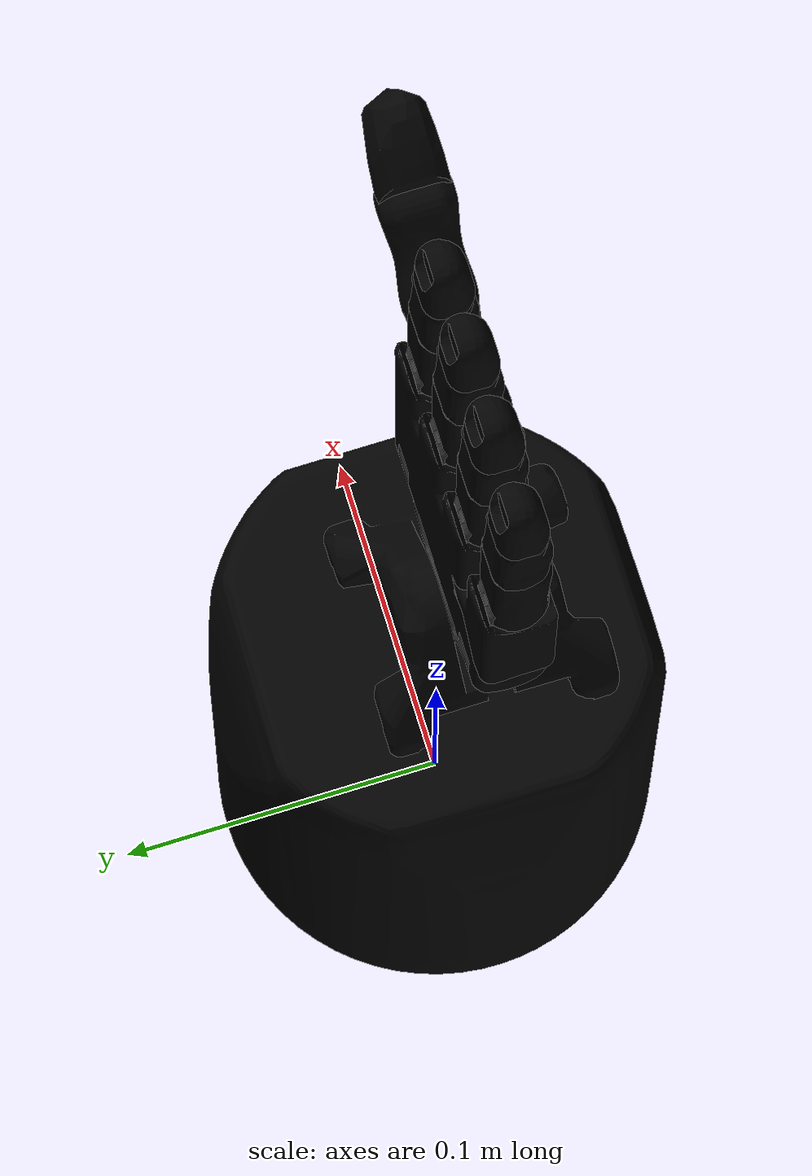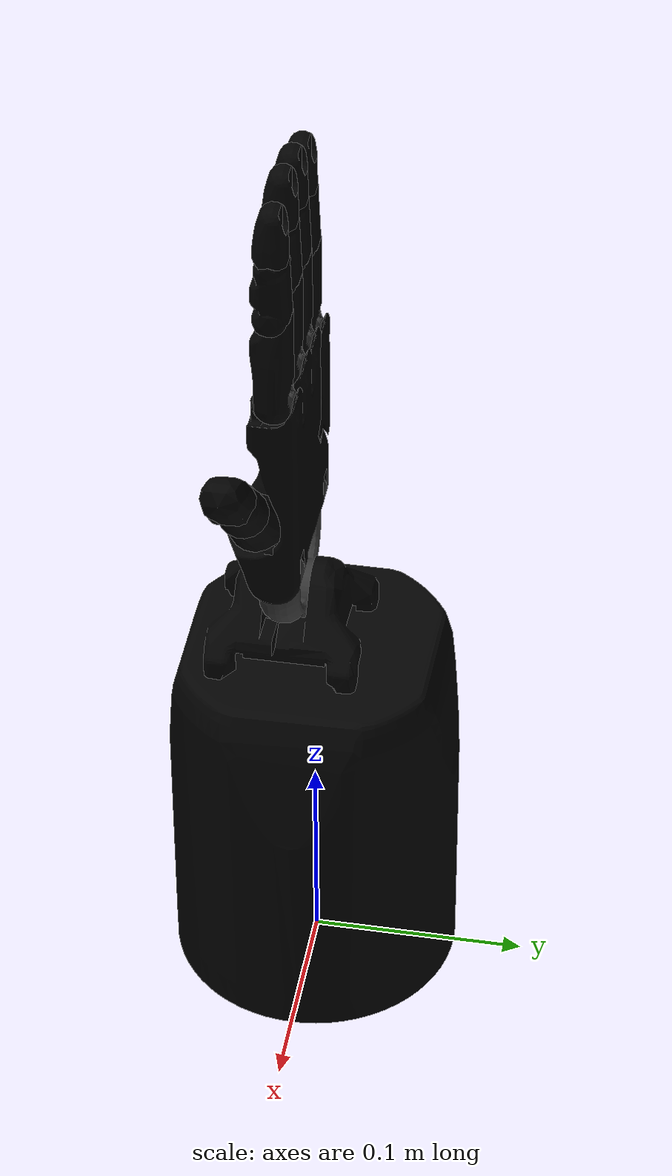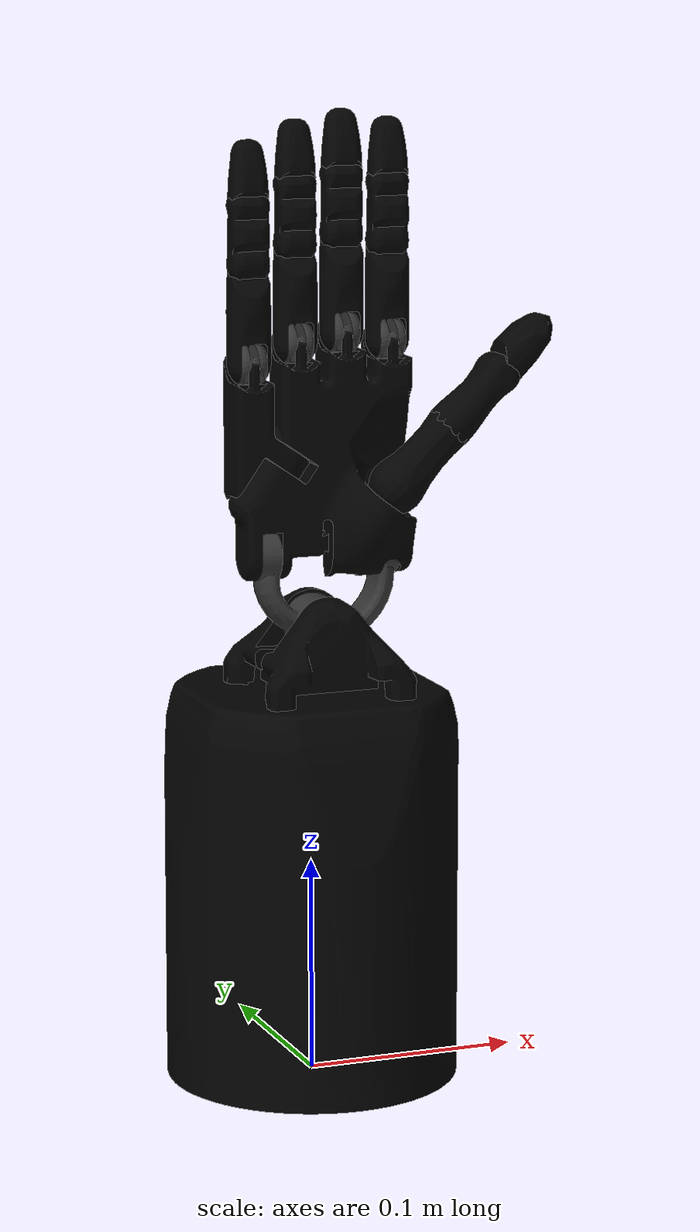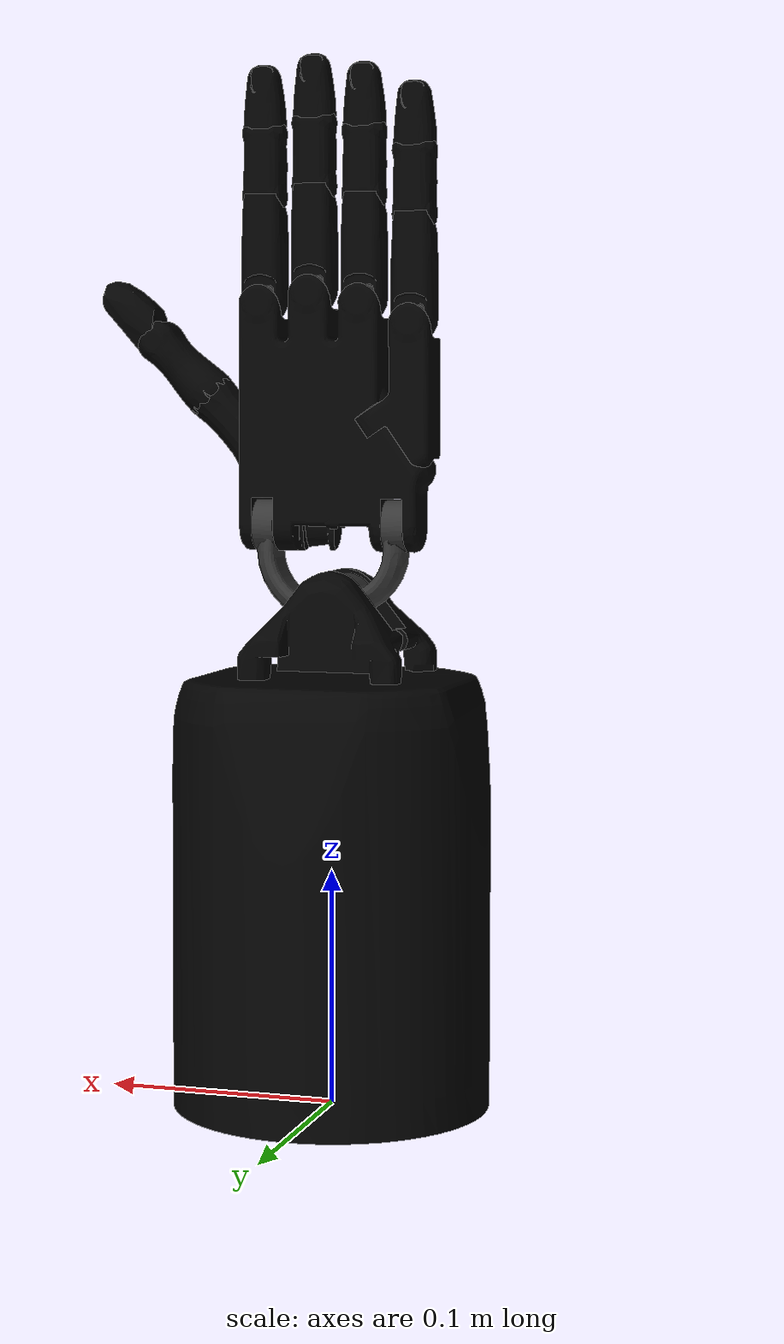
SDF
<?xml version="1.0"?>
<sdf version='1.7'>
    <model name='shadow_hand'>
        <self_collide>false</self_collide>

        <!-- Fix To World -->
        <joint name="panda_joint_world" type="fixed">
            <parent>world</parent>
            <child>forearm</child>
        </joint>

        <!-- Forearm-Wrist-Palm Links -->
        <link name='forearm'>
            <self_collide>false</self_collide>
            <visual name='forearm_visual'>
                <geometry>
                    <mesh>
                        <uri>meshes/visual/forearm.dae</uri>
                    </mesh>
                </geometry>
            </visual>
            <collision name='forearm_collision'>
                <geometry>
                    <mesh>
                        <uri>meshes/collision/forearm.stl</uri>
                    </mesh>
                </geometry>
            </collision>
            <inertial>
                <pose>0.000158665 -0.000296213 0.0939161 0 0 0</pose>
                <mass>1.8670590993494502</mass>
                <inertia>
                    <ixx>0.007479321336534709</ixx>
                    <iyy>0.007475478330362289</iyy>
                    <izz>0.004156257054350847</izz>
                    <ixy>-7.267790891410464e-08</ixy>
                    <ixz>4.2529549726838906e-07</ixz>
                    <iyz>3.883949104746152e-05</iyz>
                </inertia>
            </inertial>
        </link>

        <link name='wrist'>
            <self_collide>false</self_collide>
            <pose relative_to='forearm_joint'>0 0 0 0 0 0</pose>
            <visual name='wrist_visual'>
                <geometry>
                    <mesh>
                        <uri>meshes/visual/wrist.dae</uri>
                    </mesh>
                </geometry>
            </visual>
            <collision name='wrist_collision'>
                <geometry>
                    <mesh>
                        <uri>meshes/collision/wrist.stl</uri>
                    </mesh>
                </geometry>
            </collision>
            <inertial>
                <pose>0.00199931 -4.79026e-05 0.0114013 0 0 0</pose>
                <mass>0.20946475291094357</mass>
                <inertia>
                    <ixx>5.593091243122308e-05</ixx>
                    <iyy>0.00012848029174956482</iyy>
                    <izz>8.86688859858151e-05</izz>
                    <ixy>-1.8807050662536076e-08</ixy>
                    <ixz>-1.3060607259007272e-06</ixz>
                    <iyz>-1.1433247253685913e-07</iyz>
                </inertia>
            </inertial>
        </link>

        <link name='palm'>
            <self_collide>false</self_collide>
            <pose relative_to='wrist_joint'>0 0 0 0 0 0</pose>
            <visual name='palm_visual'>
                <geometry>
                    <mesh>
                        <uri>meshes/visual/palm.dae</uri>
                    </mesh>
                </geometry>
            </visual>
            <collision name='palm_collision'>
                <geometry>
                    <mesh>
                        <uri>meshes/collision/palm.stl</uri>
                    </mesh>
                </geometry>
            </collision>
            <inertial>
                <pose>0.00560659 0.000168738 0.0406171 0 0 0</pose>
                <mass>0.8989030155430766</mass>
                <inertia>
                    <ixx>0.0007551001272989889</ixx>
                    <iyy>0.001091486701981928</iyy>
                    <izz>0.0004204867341503172</izz>
                    <ixy>-3.492739878765091e-06</ixy>
                    <ixz>-8.196253003214903e-05</ixz>
                    <iyz>-2.266383206764121e-05</iyz>
                </inertia>
            </inertial>
        </link>

        <!-- Forearm-Wrist Joints -->
        <joint name='forearm_joint' type='fixed'>
            <pose relative_to='forearm'>0 -0.01 0.213 0 0 0</pose>
            <parent>forearm</parent>
            <child>wrist</child>
        </joint>

        <joint name='wrist_joint' type='fixed'>
            <pose relative_to='wrist'>0 0 0.034 0 0 0</pose>
            <parent>wrist</parent>
            <child>palm</child>
        </joint>

        <!-- Thumb Links -->
        <link name='thumb_base'>
            <pose relative_to='thumb_joint1'>0 0 0 0 0 0</pose>
        </link>

        <link name='thumb_proximal'>
            <self_collide>false</self_collide>
            <pose relative_to='thumb_joint2'>0 0 0 0 0 0</pose>
            <visual name='thumb_proximal_visual'>
                <geometry>
                    <mesh>
                        <uri>meshes/visual/thumb_proximal.dae</uri>
                    </mesh>
                </geometry>
            </visual>
            <collision name='thumb_proximal_collision'>
                <geometry>
                    <mesh>
                        <uri>meshes/collision/thumb_proximal.stl</uri>
                    </mesh>
                </geometry>
            </collision>
            <inertial>
                <pose>-6.37678e-06 -2.60263e-05 0.0167151 0 0 0</pose>
                <mass>0.14945225599921122</mass>
                <inertia>
                    <ixx>4.411418271322683e-05</ixx>
                    <iyy>4.4102721450521684e-05</iyy>
                    <izz>8.856520036977598e-06</izz>
                    <ixy>5.554615670778389e-09</ixy>
                    <ixz>-3.57753482568105e-08</ixz>
                    <iyz>-1.4658342135322015e-08</iyz>
                </inertia>
            </inertial>
        </link>

        <link name='thumb_hub'>
            <pose relative_to='thumb_joint3'>0 0 0 0 0 0</pose>
        </link>

        <link name='thumb_middle'>
            <self_collide>false</self_collide>
            <pose relative_to='thumb_joint4'>0 0 0 0 0 0</pose>
            <visual name='thumb_middle_visual'>
                <geometry>
                    <mesh>
                        <uri>meshes/visual/thumb_middle.dae</uri>
                    </mesh>
                </geometry>
            </visual>
            <collision name='thumb_middle_collision'>
                <geometry>
                    <mesh>
                        <uri>meshes/collision/thumb_middle.stl</uri>
                    </mesh>
                </geometry>
            </collision>
            <inertial>
                <pose>7.47896e-05 -4.5082e-05 0.0153482 0 0 0</pose>
                <mass>0.11021476278915708</mass>
                <inertia>
                    <ixx>2.4368918444527592e-05</ixx>
                    <iyy>2.3749026220471563e-05</iyy>
                    <izz>5.6166937499601026e-06</izz>
                    <ixy>2.681795007815437e-12</ixy>
                    <ixz>1.6935381501090475e-08</ixz>
                    <iyz>4.266902097800442e-12</iyz>
                </inertia>
            </inertial>
        </link>

        <link name='thumb_distal'>
            <self_collide>false</self_collide>
            <pose relative_to='thumb_joint5'>0 0 0 0 0 0</pose>
            <visual name='thumb_distal_visual'>
                <geometry>
                    <mesh>
                        <uri>meshes/visual/thumb_distal.dae</uri>
                    </mesh>
                </geometry>
            </visual>
            <collision name='thumb_distal_collision'>
                <geometry>
                    <mesh>
                        <uri>meshes/collision/thumb_distal.stl</uri>
                    </mesh>
                </geometry>
            </collision>
            <inertial>
                <pose>2.55227e-05 0.000159331 0.0160141 0 0 0</pose>
                <mass>0.06104943729865724</mass>
                <inertia>
                    <ixx>5.578197585761807e-06</ixx>
                    <iyy>6.068884597217566e-06</iyy>
                    <izz>2.809810687287833e-06</izz>
                    <ixy>-7.712412276601149e-09</ixy>
                    <ixz>2.6443953020771643e-08</ixz>
                    <iyz>3.177683019939289e-07</iyz>
                </inertia>
            </inertial>
        </link>

        <!-- Thumb Joints -->
        <joint name='thumb_joint1' type='revolute'>
            <pose relative_to='palm'>0.034 -0.0085 0.029 0 0.785398 0</pose>
            <parent>palm</parent>
            <child>thumb_base</child>
            <axis>
                <xyz>0 0 -1</xyz>
                <limit>
                    <lower>-1.0472</lower>
                    <upper>1.0472</upper>
                    <effort>100</effort>
                    <velocity>4</velocity>
                </limit>
                <dynamics>
                    <damping>0.2</damping>
                    <friction>0.0005</friction>
                    <spring_reference>0</spring_reference>
                    <spring_stiffness>0</spring_stiffness>
                </dynamics>
            </axis>
        </joint>

        <joint name='thumb_joint2' type='revolute'>
            <pose relative_to='thumb_base'>0 0 0 0 0 0</pose>
            <parent>thumb_base</parent>
            <child>thumb_proximal</child>
            <axis>
                <xyz>1 0 0</xyz>
                <limit>
                    <lower>0</lower>
                    <upper>1.22173</upper>
                    <effort>100</effort>
                    <velocity>4</velocity>
                </limit>
                <dynamics>
                    <damping>0.2</damping>
                    <friction>0.0005</friction>
                    <spring_reference>0</spring_reference>
                    <spring_stiffness>0</spring_stiffness>
                </dynamics>
            </axis>
        </joint>

        <joint name='thumb_joint3' type='revolute'>
            <pose relative_to='thumb_proximal'>0 0 0.038 0 0 0</pose>
            <parent>thumb_proximal</parent>
            <child>thumb_hub</child>
            <axis>
                <xyz>1 0 0</xyz>
                <limit>
                    <lower>-0.20944</lower>
                    <upper>0.20944</upper>
                    <effort>20</effort>
                    <velocity>4</velocity>
                </limit>
                <dynamics>
                    <damping>0.1</damping>
                    <friction>0.00005</friction>
                    <spring_reference>0</spring_reference>
                    <spring_stiffness>0</spring_stiffness>
                </dynamics>
            </axis>
        </joint>

        <joint name='thumb_joint4' type='revolute'>
            <pose relative_to='thumb_hub'>0 0 0 0 0 0</pose>
            <parent>thumb_hub</parent>
            <child>thumb_middle</child>
            <axis>
                <xyz>0 -1 0</xyz>
                <limit>
                    <lower>-0.698132</lower>
                    <upper>0.698132</upper>
                    <effort>20</effort>
                    <velocity>2</velocity>
                </limit>
                <dynamics>
                    <damping>0.05</damping>
                    <friction>0.00005</friction>
                    <spring_reference>0</spring_reference>
                    <spring_stiffness>0</spring_stiffness>
                </dynamics>
            </axis>
        </joint>

        <joint name='thumb_joint5' type='revolute'>
            <pose relative_to='thumb_middle'>0 0 0.032 0 0 -1.5708</pose>
            <parent>thumb_middle</parent>
            <child>thumb_distal</child>
            <axis>
                <xyz>1 0 0</xyz>
                <limit>
                    <lower>0</lower>
                    <upper>1.5708</upper>
                    <effort>20</effort>
                    <velocity>4</velocity>
                </limit>
                <dynamics>
                    <damping>0.025</damping>
                    <friction>0.00001</friction>
                    <spring_reference>0</spring_reference>
                    <spring_stiffness>0</spring_stiffness>
                </dynamics>
            </axis>
        </joint>

        <!-- Index Finger Links -->
        <link name='index_finger_knuckle'>
            <self_collide>false</self_collide>
            <pose relative_to='index_finger_joint1'>0 0 0.0005 0 0 0</pose>
            <visual name='index_finger_knuckle_visual'>
                <geometry>
                    <mesh>
                        <uri>meshes/visual/knuckle.dae</uri>
                    </mesh>
                </geometry>
            </visual>
            <collision name='index_finger_knuckle_collision'>
                <geometry>
                    <mesh>
                        <uri>meshes/collision/knuckle.stl</uri>
                    </mesh>
                </geometry>
            </collision>
            <inertial>
                <pose>-1.04918e-05 0.000479353 -0.000502517 0 0 0</pose>
                <mass>0.01756170743072032</mass>
                <inertia>
                    <ixx>6.316479307176084e-07</ixx>
                    <iyy>5.565126662837287e-07</iyy>
                    <izz>5.418430344218945e-07</izz>
                    <ixy>-1.2382869141168063e-09</ixy>
                    <ixz>-5.831177123574035e-10</ixz>
                    <iyz>1.0137214702954782e-08</iyz>
                </inertia>
            </inertial>
        </link>

        <link name='index_finger_proximal'>
            <self_collide>false</self_collide>
            <pose relative_to='index_finger_joint2'>0 0 0 0 0 0</pose>
            <visual name='index_finger_proximal_visual'>
                <geometry>
                    <mesh>
                        <uri>meshes/visual/finger_proximal.dae</uri>
                    </mesh>
                </geometry>
            </visual>
            <collision name='index_finger_proximal_collision'>
                <geometry>
                    <mesh>
                        <uri>meshes/collision/finger_proximal.stl</uri>
                    </mesh>
                </geometry>
            </collision>
            <inertial>
                <pose>1.36393e-06 5.46069e-05 0.0253411 0 0 0</pose>
                <mass>0.08285889035010244</mass>
                <inertia>
                    <ixx>1.64199692748578e-05</ixx>
                    <iyy>1.7157966187680744e-05</iyy>
                    <izz>3.747449913981619e-06</izz>
                    <ixy>1.253825845654266e-11</ixy>
                    <ixz>-7.420066134437321e-10</ixz>
                    <iyz>-1.7510504779955134e-07</iyz>
                </inertia>
            </inertial>
        </link>

        <link name='index_finger_middle'>
            <self_collide>false</self_collide>
            <pose relative_to='index_finger_joint3'>0 0 0 0 0 0</pose>
            <visual name='index_finger_middle_visual'>
                <geometry>
                    <mesh>
                        <uri>meshes/visual/finger_middle.dae</uri>
                    </mesh>
                </geometry>
            </visual>
            <collision name='index_finger_middle_collision'>
                <geometry>
                    <mesh>
                        <uri>meshes/collision/finger_middle.stl</uri>
                    </mesh>
                </geometry>
            </collision>
            <inertial>
                <pose>-2.71515e-06 -3.22079e-05 0.0115512 0 0 0</pose>
                <mass>0.06213685090672571</mass>
                <inertia>
                    <ixx>7.92822501939719e-06</ixx>
                    <iyy>8.29486054080741e-06</iyy>
                    <izz>2.3370015376721975e-06</izz>
                    <ixy>1.358464044894204e-12</ixy>
                    <ixz>8.557150053771225e-11</ixz>
                    <iyz>1.5315102261449506e-09</iyz>
                </inertia>
            </inertial>
        </link>

        <link name='index_finger_distal'>
            <self_collide>false</self_collide>
            <pose relative_to='index_finger_joint4'>0 0 0 0 0 0</pose>
            <visual name='index_finger_distal_visual'>
                <geometry>
                    <mesh>
                        <uri>meshes/visual/finger_distal.dae</uri>
                    </mesh>
                </geometry>
            </visual>
            <collision name='index_finger_distal_collision'>
                <geometry>
                    <mesh>
                        <uri>meshes/collision/finger_distal.stl</uri>
                    </mesh>
                </geometry>
            </collision>
            <inertial>
                <pose>6.76188e-09 -0.000120361 0.0153037 0 0 0</pose>
                <mass>0.02746135061792896</mass>
                <inertia>
                    <ixx>1.4194224188403926e-06</ixx>
                    <iyy>1.5806235334852189e-06</iyy>
                    <izz>8.420308791621785e-07</izz>
                    <ixy>1.6317994313320325e-12</ixy>
                    <ixz>1.2231062439498777e-12</ixz>
                    <iyz>4.943899859930379e-09</iyz>
                </inertia>
            </inertial>
        </link>

        <!-- Index Finger Joints -->
        <joint name='index_finger_joint1' type='revolute'>
            <pose relative_to='palm'>0.033 0 0.095 0 0 0</pose>
            <parent>palm</parent>
            <child>index_finger_knuckle</child>
            <axis>
                <xyz>0 -1 0</xyz>
                <limit>
                    <lower>-0.349066</lower>
                    <upper>0.349066</upper>
                    <effort>20</effort>
                    <velocity>2</velocity>
                </limit>
                <dynamics>
                    <damping>0.15</damping>
                    <friction>0.0002</friction>
                    <spring_reference>0</spring_reference>
                    <spring_stiffness>0</spring_stiffness>
                </dynamics>
            </axis>
        </joint>

        <joint name='index_finger_joint2' type='revolute'>
            <pose relative_to='index_finger_knuckle'>0 0 0 0 0 0</pose>
            <parent>index_finger_knuckle</parent>
            <child>index_finger_proximal</child>
            <axis>
                <xyz>1 0 0</xyz>
                <limit>
                    <lower>0</lower>
                    <upper>1.5708</upper>
                    <effort>20</effort>
                    <velocity>2</velocity>
                </limit>
                <dynamics>
                    <damping>0.1</damping>
                    <friction>0.0001</friction>
                    <spring_reference>0</spring_reference>
                    <spring_stiffness>0</spring_stiffness>
                </dynamics>
            </axis>
        </joint>

        <joint name='index_finger_joint3' type='revolute'>
            <pose relative_to='index_finger_proximal'>0 0 0.045 0 0 0</pose>
            <parent>index_finger_proximal</parent>
            <child>index_finger_middle</child>
            <axis>
                <xyz>1 0 0</xyz>
                <limit>
                    <lower>0</lower>
                    <upper>1.5708</upper>
                    <effort>20</effort>
                    <velocity>2</velocity>
                </limit>
                <dynamics>
                    <damping>0.05</damping>
                    <friction>0.00005</friction>
                    <spring_reference>0</spring_reference>
                    <spring_stiffness>0</spring_stiffness>
                </dynamics>
            </axis>
        </joint>

        <joint name='index_finger_joint4' type='revolute'>
            <pose relative_to='index_finger_middle'>0 0 0.025 0 0 0</pose>
            <parent>index_finger_middle</parent>
            <child>index_finger_distal</child>
            <axis>
                <xyz>1 0 0</xyz>
                <limit>
                    <lower>0</lower>
                    <upper>1.5708</upper>
                    <effort>20</effort>
                    <velocity>2</velocity>
                </limit>
                <dynamics>
                    <damping>0.025</damping>
                    <friction>0.00001</friction>
                    <spring_reference>0</spring_reference>
                    <spring_stiffness>0</spring_stiffness>
                </dynamics>
            </axis>
        </joint>

        <!-- Middle Finger Links -->
        <link name='middle_finger_knuckle'>
            <self_collide>false</self_collide>
            <pose relative_to='middle_finger_joint1'>0 0 0.0005 0 0 0</pose>
            <visual name='middle_finger_knuckle_visual'>
                <geometry>
                    <mesh>
                        <uri>meshes/visual/knuckle.dae</uri>
                    </mesh>
                </geometry>
            </visual>
            <collision name='middle_finger_knuckle_collision'>
                <geometry>
                    <mesh>
                        <uri>meshes/collision/knuckle.stl</uri>
                    </mesh>
                </geometry>
            </collision>
            <inertial>
                <pose>-1.04918e-05 0.000479353 -0.000502517 0 0 0</pose>
                <mass>0.01756170743072032</mass>
                <inertia>
                    <ixx>6.316479307176084e-07</ixx>
                    <iyy>5.565126662837287e-07</iyy>
                    <izz>5.418430344218945e-07</izz>
                    <ixy>-1.2382869141168063e-09</ixy>
                    <ixz>-5.831177123574035e-10</ixz>
                    <iyz>1.0137214702954782e-08</iyz>
                </inertia>
            </inertial>
        </link>

        <link name='middle_finger_proximal'>
            <self_collide>false</self_collide>
            <pose relative_to='middle_finger_joint2'>0 0 0 0 0 0</pose>
            <visual name='middle_finger_proximal_visual'>
                <geometry>
                    <mesh>
                        <uri>meshes/visual/finger_proximal.dae</uri>
                    </mesh>
                </geometry>
            </visual>
            <collision name='middle_finger_proximal_collision'>
                <geometry>
                    <mesh>
                        <uri>meshes/collision/finger_proximal.stl</uri>
                    </mesh>
                </geometry>
            </collision>
            <inertial>
                <pose>1.36393e-06 5.46069e-05 0.0253411 0 0 0</pose>
                <mass>0.08285889035010244</mass>
                <inertia>
                    <ixx>1.64199692748578e-05</ixx>
                    <iyy>1.7157966187680744e-05</iyy>
                    <izz>3.747449913981619e-06</izz>
                    <ixy>1.253825845654266e-11</ixy>
                    <ixz>-7.420066134437321e-10</ixz>
                    <iyz>-1.7510504779955134e-07</iyz>
                </inertia>
            </inertial>
        </link>

        <link name='middle_finger_middle'>
            <self_collide>false</self_collide>
            <pose relative_to='middle_finger_joint3'>0 0 0 0 0 0</pose>
            <visual name='middle_finger_middle_visual'>
                <geometry>
                    <mesh>
                        <uri>meshes/visual/finger_middle.dae</uri>
                    </mesh>
                </geometry>
            </visual>
            <collision name='middle_finger_middle_collision'>
                <geometry>
                    <mesh>
                        <uri>meshes/collision/finger_middle.stl</uri>
                    </mesh>
                </geometry>
            </collision>
            <inertial>
                <pose>-2.71515e-06 -3.22079e-05 0.0115512 0 0 0</pose>
                <mass>0.06213685090672571</mass>
                <inertia>
                    <ixx>7.92822501939719e-06</ixx>
                    <iyy>8.29486054080741e-06</iyy>
                    <izz>2.3370015376721975e-06</izz>
                    <ixy>1.358464044894204e-12</ixy>
                    <ixz>8.557150053771225e-11</ixz>
                    <iyz>1.5315102261449506e-09</iyz>
                </inertia>
            </inertial>
        </link>

        <link name='middle_finger_distal'>
            <self_collide>false</self_collide>
            <pose relative_to='middle_finger_joint4'>0 0 0 0 0 0</pose>
            <visual name='middle_finger_distal_visual'>
                <geometry>
                    <mesh>
                        <uri>meshes/visual/finger_distal.dae</uri>
                    </mesh>
                </geometry>
            </visual>
            <collision name='middle_finger_distal_collision'>
                <geometry>
                    <mesh>
                        <uri>meshes/collision/finger_distal.stl</uri>
                    </mesh>
                </geometry>
            </collision>
            <inertial>
                <pose>6.76188e-09 -0.000120361 0.0153037 0 0 0</pose>
                <mass>0.02746135061792896</mass>
                <inertia>
                    <ixx>1.4194224188403926e-06</ixx>
                    <iyy>1.5806235334852189e-06</iyy>
                    <izz>8.420308791621785e-07</izz>
                    <ixy>1.6317994313320325e-12</ixy>
                    <ixz>1.2231062439498777e-12</ixz>
                    <iyz>4.943899859930379e-09</iyz>
                </inertia>
            </inertial>
        </link>

        <!-- Middle Finger Joints -->
        <joint name='middle_finger_joint1' type='revolute'>
            <pose relative_to='palm'>0.011 0 0.099 0 0 0</pose>
            <parent>palm</parent>
            <child>middle_finger_knuckle</child>
            <axis>
                <xyz>0 -1 0</xyz>
                <limit>
                    <lower>-0.349066</lower>
                    <upper>0.349066</upper>
                    <effort>20</effort>
                    <velocity>2</velocity>
                </limit>
                <dynamics>
                    <damping>0.15</damping>
                    <friction>0.0002</friction>
                    <spring_reference>0</spring_reference>
                    <spring_stiffness>0</spring_stiffness>
                </dynamics>
            </axis>
        </joint>

        <joint name='middle_finger_joint2' type='revolute'>
            <pose relative_to='middle_finger_knuckle'>0 0 0 0 0 0</pose>
            <parent>middle_finger_knuckle</parent>
            <child>middle_finger_proximal</child>
            <axis>
                <xyz>1 0 0</xyz>
                <limit>
                    <lower>0</lower>
                    <upper>1.5708</upper>
                    <effort>20</effort>
                    <velocity>2</velocity>
                </limit>
                <dynamics>
                    <damping>0.1</damping>
                    <friction>0.0001</friction>
                    <spring_reference>0</spring_reference>
                    <spring_stiffness>0</spring_stiffness>
                </dynamics>
            </axis>
        </joint>

        <joint name='middle_finger_joint3' type='revolute'>
            <pose relative_to='middle_finger_proximal'>0 0 0.045 0 0 0</pose>
            <parent>middle_finger_proximal</parent>
            <child>middle_finger_middle</child>
            <axis>
                <xyz>1 0 0</xyz>
                <limit>
                    <lower>0</lower>
                    <upper>1.5708</upper>
                    <effort>20</effort>
                    <velocity>2</velocity>
                </limit>
                <dynamics>
                    <damping>0.05</damping>
                    <friction>0.00005</friction>
                    <spring_reference>0</spring_reference>
                    <spring_stiffness>0</spring_stiffness>
                </dynamics>
            </axis>
        </joint>

        <joint name='middle_finger_joint4' type='revolute'>
            <pose relative_to='middle_finger_middle'>0 0 0.025 0 0 0</pose>
            <parent>middle_finger_middle</parent>
            <child>middle_finger_distal</child>
            <axis>
                <xyz>1 0 0</xyz>
                <limit>
                    <lower>0</lower>
                    <upper>1.5708</upper>
                    <effort>20</effort>
                    <velocity>2</velocity>
                </limit>
                <dynamics>
                    <damping>0.025</damping>
                    <friction>0.00001</friction>
                    <spring_reference>0</spring_reference>
                    <spring_stiffness>0</spring_stiffness>
                </dynamics>
            </axis>
        </joint>

        <!-- Ring Finger Links -->
        <link name='ring_finger_knuckle'>
            <self_collide>false</self_collide>
            <pose relative_to='ring_finger_joint1'>0 0 0.0005 0 0 0</pose>
            <visual name='ring_finger_knuckle_visual'>
                <geometry>
                    <mesh>
                        <uri>meshes/visual/knuckle.dae</uri>
                    </mesh>
                </geometry>
            </visual>
            <collision name='ring_finger_knuckle_collision'>
                <geometry>
                    <mesh>
                        <uri>meshes/collision/knuckle.stl</uri>
                    </mesh>
                </geometry>
            </collision>
            <inertial>
                <pose>-1.04918e-05 0.000479353 -0.000502517 0 0 0</pose>
                <mass>0.01756170743072032</mass>
                <inertia>
                    <ixx>6.316479307176084e-07</ixx>
                    <iyy>5.565126662837287e-07</iyy>
                    <izz>5.418430344218945e-07</izz>
                    <ixy>-1.2382869141168063e-09</ixy>
                    <ixz>-5.831177123574035e-10</ixz>
                    <iyz>1.0137214702954782e-08</iyz>
                </inertia>
            </inertial>
        </link>

        <link name='ring_finger_proximal'>
            <self_collide>false</self_collide>
            <pose relative_to='ring_finger_joint2'>0 0 0 0 0 0</pose>
            <visual name='ring_finger_proximal_visual'>
                <geometry>
                    <mesh>
                        <uri>meshes/visual/finger_proximal.dae</uri>
                    </mesh>
                </geometry>
            </visual>
            <collision name='ring_finger_proximal_collision'>
                <geometry>
                    <mesh>
                        <uri>meshes/collision/finger_proximal.stl</uri>
                    </mesh>
                </geometry>
            </collision>
            <inertial>
                <pose>1.36393e-06 5.46069e-05 0.0253411 0 0 0</pose>
                <mass>0.08285889035010244</mass>
                <inertia>
                    <ixx>1.64199692748578e-05</ixx>
                    <iyy>1.7157966187680744e-05</iyy>
                    <izz>3.747449913981619e-06</izz>
                    <ixy>1.253825845654266e-11</ixy>
                    <ixz>-7.420066134437321e-10</ixz>
                    <iyz>-1.7510504779955134e-07</iyz>
                </inertia>
            </inertial>
        </link>

        <link name='ring_finger_middle'>
            <self_collide>false</self_collide>
            <pose relative_to='ring_finger_joint3'>0 0 0 0 0 0</pose>
            <visual name='ring_finger_middle_visual'>
                <geometry>
                    <mesh>
                        <uri>meshes/visual/finger_middle.dae</uri>
                    </mesh>
                </geometry>
            </visual>
            <collision name='ring_finger_middle_collision'>
                <geometry>
                    <mesh>
                        <uri>meshes/collision/finger_middle.stl</uri>
                    </mesh>
                </geometry>
            </collision>
            <inertial>
                <pose>-2.71515e-06 -3.22079e-05 0.0115512 0 0 0</pose>
                <mass>0.06213685090672571</mass>
                <inertia>
                    <ixx>7.92822501939719e-06</ixx>
                    <iyy>8.29486054080741e-06</iyy>
                    <izz>2.3370015376721975e-06</izz>
                    <ixy>1.358464044894204e-12</ixy>
                    <ixz>8.557150053771225e-11</ixz>
                    <iyz>1.5315102261449506e-09</iyz>
                </inertia>
            </inertial>
        </link>

        <link name='ring_finger_distal'>
            <self_collide>false</self_collide>
            <pose relative_to='ring_finger_joint4'>0 0 0 0 0 0</pose>
            <visual name='ring_finger_distal_visual'>
                <geometry>
                    <mesh>
                        <uri>meshes/visual/finger_distal.dae</uri>
                    </mesh>
                </geometry>
            </visual>
            <collision name='ring_finger_distal_collision'>
                <geometry>
                    <mesh>
                        <uri>meshes/collision/finger_distal.stl</uri>
                    </mesh>
                </geometry>
            </collision>
            <inertial>
                <pose>6.76188e-09 -0.000120361 0.0153037 0 0 0</pose>
                <mass>0.02746135061792896</mass>
                <inertia>
                    <ixx>1.4194224188403926e-06</ixx>
                    <iyy>1.5806235334852189e-06</iyy>
                    <izz>8.420308791621785e-07</izz>
                    <ixy>1.6317994313320325e-12</ixy>
                    <ixz>1.2231062439498777e-12</ixz>
                    <iyz>4.943899859930379e-09</iyz>
                </inertia>
            </inertial>
        </link>

        <!-- Ring Finger Joints -->
        <joint name='ring_finger_joint1' type='revolute'>
            <pose relative_to='palm'>-0.011 0 0.095 0 0 0</pose>
            <parent>palm</parent>
            <child>ring_finger_knuckle</child>
            <axis>
                <xyz>0 1 0</xyz>
                <limit>
                    <lower>-0.349066</lower>
                    <upper>0.349066</upper>
                    <effort>20</effort>
                    <velocity>2</velocity>
                </limit>
                <dynamics>
                    <damping>0.15</damping>
                    <friction>0.0002</friction>
                    <spring_reference>0</spring_reference>
                    <spring_stiffness>0</spring_stiffness>
                </dynamics>
            </axis>
        </joint>

        <joint name='ring_finger_joint2' type='revolute'>
            <pose relative_to='ring_finger_knuckle'>0 0 0 0 0 0</pose>
            <parent>ring_finger_knuckle</parent>
            <child>ring_finger_proximal</child>
            <axis>
                <xyz>1 0 0</xyz>
                <limit>
                    <lower>0</lower>
                    <upper>1.5708</upper>
                    <effort>20</effort>
                    <velocity>2</velocity>
                </limit>
                <dynamics>
                    <damping>0.1</damping>
                    <friction>0.0001</friction>
                    <spring_reference>0</spring_reference>
                    <spring_stiffness>0</spring_stiffness>
                </dynamics>
            </axis>
        </joint>

        <joint name='ring_finger_joint3' type='revolute'>
            <pose relative_to='ring_finger_proximal'>0 0 0.045 0 0 0</pose>
            <parent>ring_finger_proximal</parent>
            <child>ring_finger_middle</child>
            <axis>
                <xyz>1 0 0</xyz>
                <limit>
                    <lower>0</lower>
                    <upper>1.5708</upper>
                    <effort>20</effort>
                    <velocity>2</velocity>
                </limit>
                <dynamics>
                    <damping>0.05</damping>
                    <friction>0.00005</friction>
                    <spring_reference>0</spring_reference>
                    <spring_stiffness>0</spring_stiffness>
                </dynamics>
            </axis>
        </joint>

        <joint name='ring_finger_joint4' type='revolute'>
            <pose relative_to='ring_finger_middle'>0 0 0.025 0 0 0</pose>
            <parent>ring_finger_middle</parent>
            <child>ring_finger_distal</child>
            <axis>
                <xyz>1 0 0</xyz>
                <limit>
                    <lower>0</lower>
                    <upper>1.5708</upper>
                    <effort>20</effort>
                    <velocity>2</velocity>
                </limit>
                <dynamics>
                    <damping>0.025</damping>
                    <friction>0.00001</friction>
                    <spring_reference>0</spring_reference>
                    <spring_stiffness>0</spring_stiffness>
                </dynamics>
            </axis>
        </joint>

        <!-- Little Finger Links -->
        <link name='little_finger_metacarpal'>
            <self_collide>false</self_collide>
            <pose relative_to='little_finger_joint1'>0 0 0 0 0 0</pose>
            <visual name='little_finger_metacarpal_visual'>
                <geometry>
                    <mesh>
                        <uri>meshes/visual/metacarpal.dae</uri>
                    </mesh>
                </geometry>
            </visual>
            <collision name='little_finger_metacarpal_collision'>
                <geometry>
                    <mesh>
                        <uri>meshes/collision/metacarpal.stl</uri>
                    </mesh>
                </geometry>
            </collision>
            <inertial>
                <pose>0.00256076 0.000530977 0.0357809 0 0 0</pose>
                <mass>0.1437814788875964</mass>
                <inertia>
                    <ixx>3.19475650762325e-05</ixx>
                    <iyy>3.6120384617440835e-05</iyy>
                    <izz>1.58472918335685e-05</izz>
                    <ixy>2.1306799619147762e-07</ixy>
                    <ixz>4.34652595971126e-06</ixz>
                    <iyz>-6.148711513920819e-07</iyz>
                </inertia>
            </inertial>
        </link>

        <link name='little_finger_knuckle'>
            <self_collide>false</self_collide>
            <pose relative_to='little_finger_joint2'>0 0 0.0005 0 0 0</pose>
            <visual name='little_finger_knuckle_visual'>
                <geometry>
                    <mesh>
                        <uri>meshes/visual/knuckle.dae</uri>
                    </mesh>
                </geometry>
            </visual>
            <collision name='little_finger_knuckle_collision'>
                <geometry>
                    <mesh>
                        <uri>meshes/collision/knuckle.stl</uri>
                    </mesh>
                </geometry>
            </collision>
            <inertial>
                <pose>-1.04918e-05 0.000479353 -0.000502517 0 0 0</pose>
                <mass>0.01756170743072032</mass>
                <inertia>
                    <ixx>6.316479307176084e-07</ixx>
                    <iyy>5.565126662837287e-07</iyy>
                    <izz>5.418430344218945e-07</izz>
                    <ixy>-1.2382869141168063e-09</ixy>
                    <ixz>-5.831177123574035e-10</ixz>
                    <iyz>1.0137214702954782e-08</iyz>
                </inertia>
            </inertial>
        </link>

        <link name='little_finger_proximal'>
            <self_collide>false</self_collide>
            <pose relative_to='little_finger_joint3'>0 0 0 0 0 0</pose>
            <visual name='little_finger_proximal_visual'>
                <geometry>
                    <mesh>
                        <uri>meshes/visual/finger_proximal.dae</uri>
                    </mesh>
                </geometry>
            </visual>
            <collision name='little_finger_proximal_collision'>
                <geometry>
                    <mesh>
                        <uri>meshes/collision/finger_proximal.stl</uri>
                    </mesh>
                </geometry>
            </collision>
            <inertial>
                <pose>1.36393e-06 5.46069e-05 0.0253411 0 0 0</pose>
                <mass>0.08285889035010244</mass>
                <inertia>
                    <ixx>1.64199692748578e-05</ixx>
                    <iyy>1.7157966187680744e-05</iyy>
                    <izz>3.747449913981619e-06</izz>
                    <ixy>1.253825845654266e-11</ixy>
                    <ixz>-7.420066134437321e-10</ixz>
                    <iyz>-1.7510504779955134e-07</iyz>
                </inertia>
            </inertial>
        </link>

        <link name='little_finger_middle'>
            <self_collide>false</self_collide>
            <pose relative_to='little_finger_joint4'>0 0 0 0 0 0</pose>
            <visual name='little_finger_middle_visual'>
                <geometry>
                    <mesh>
                        <uri>meshes/visual/finger_middle.dae</uri>
                    </mesh>
                </geometry>
            </visual>
            <collision name='little_finger_middle_collision'>
                <geometry>
                    <mesh>
                        <uri>meshes/collision/finger_middle.stl</uri>
                    </mesh>
                </geometry>
            </collision>
            <inertial>
                <pose>-2.71515e-06 -3.22079e-05 0.0115512 0 0 0</pose>
                <mass>0.06213685090672571</mass>
                <inertia>
                    <ixx>7.92822501939719e-06</ixx>
                    <iyy>8.29486054080741e-06</iyy>
                    <izz>2.3370015376721975e-06</izz>
                    <ixy>1.358464044894204e-12</ixy>
                    <ixz>8.557150053771225e-11</ixz>
                    <iyz>1.5315102261449506e-09</iyz>
                </inertia>
            </inertial>
        </link>

        <link name='little_finger_distal'>
            <self_collide>false</self_collide>
            <pose relative_to='little_finger_joint5'>0 0 0 0 0 0</pose>
            <visual name='little_finger_distal_visual'>
                <geometry>
                    <mesh>
                        <uri>meshes/visual/finger_distal.dae</uri>
                    </mesh>
                </geometry>
            </visual>
            <collision name='little_finger_distal_collision'>
                <geometry>
                    <mesh>
                        <uri>meshes/collision/finger_distal.stl</uri>
                    </mesh>
                </geometry>
            </collision>
            <inertial>
                <pose>6.76188e-09 -0.000120361 0.0153037 0 0 0</pose>
                <mass>0.02746135061792896</mass>
                <inertia>
                    <ixx>1.4194224188403926e-06</ixx>
                    <iyy>1.5806235334852189e-06</iyy>
                    <izz>8.420308791621785e-07</izz>
                    <ixy>1.6317994313320325e-12</ixy>
                    <ixz>1.2231062439498777e-12</ixz>
                    <iyz>4.943899859930379e-09</iyz>
                </inertia>
            </inertial>
        </link>

        <!-- Little Finger Joints -->
        <joint name='little_finger_joint1' type='revolute'>
            <pose relative_to='palm'>-0.033 0 0.02071 0 0 0</pose>
            <parent>palm</parent>
            <child>little_finger_metacarpal</child>
            <axis>
                <xyz>0.573576 0 0.819152</xyz>
                <limit>
                    <lower>0</lower>
                    <upper>0.785398</upper>
                    <effort>50</effort>
                    <velocity>2</velocity>
                </limit>
                <dynamics>
                    <damping>0.2</damping>
                    <friction>0.0005</friction>
                    <spring_reference>0</spring_reference>
                    <spring_stiffness>0</spring_stiffness>
                </dynamics>
            </axis>
        </joint>

        <joint name='little_finger_joint2' type='revolute'>
            <pose relative_to='little_finger_metacarpal'>0 0 0.06579 0 0 0</pose>
            <parent>little_finger_metacarpal</parent>
            <child>little_finger_knuckle</child>
            <axis>
                <xyz>0 1 0</xyz>
                <limit>
                    <lower>-0.349066</lower>
                    <upper>0.349066</upper>
                    <effort>20</effort>
                    <velocity>2</velocity>
                </limit>
                <dynamics>
                    <damping>0.15</damping>
                    <friction>0.0002</friction>
                    <spring_reference>0</spring_reference>
                    <spring_stiffness>0</spring_stiffness>
                </dynamics>
            </axis>
        </joint>

        <joint name='little_finger_joint3' type='revolute'>
            <pose relative_to='little_finger_knuckle'>0 0 0 0 0 0</pose>
            <parent>little_finger_knuckle</parent>
            <child>little_finger_proximal</child>
            <axis>
                <xyz>1 0 0</xyz>
                <limit>
                    <lower>0</lower>
                    <upper>1.5708</upper>
                    <effort>20</effort>
                    <velocity>2</velocity>
                </limit>
                <dynamics>
                    <damping>0.1</damping>
                    <friction>0.0001</friction>
                    <spring_reference>0</spring_reference>
                    <spring_stiffness>0</spring_stiffness>
                </dynamics>
            </axis>
        </joint>

        <joint name='little_finger_joint4' type='revolute'>
            <pose relative_to='little_finger_proximal'>0 0 0.045 0 0 0</pose>
            <parent>little_finger_proximal</parent>
            <child>little_finger_middle</child>
            <axis>
                <xyz>1 0 0</xyz>
                <limit>
                    <lower>0</lower>
                    <upper>1.5708</upper>
                    <effort>20</effort>
                    <velocity>2</velocity>
                </limit>
                <dynamics>
                    <damping>0.05</damping>
                    <friction>0.00005</friction>
                    <spring_reference>0</spring_reference>
                    <spring_stiffness>0</spring_stiffness>
                </dynamics>
            </axis>
        </joint>

        <joint name='little_finger_joint5' type='revolute'>
            <pose relative_to='little_finger_middle'>0 0 0.025 0 0 0</pose>
            <parent>little_finger_middle</parent>
            <child>little_finger_distal</child>
            <axis>
                <xyz>1 0 0</xyz>
                <limit>
                    <lower>0</lower>
                    <upper>1.5708</upper>
                    <effort>20</effort>
                    <velocity>2</velocity>
                </limit>
                <dynamics>
                    <damping>0.025</damping>
                    <friction>0.00001</friction>
                    <spring_reference>0</spring_reference>
                    <spring_stiffness>0</spring_stiffness>
                </dynamics>
            </axis>
        </joint>

    </model>
</sdf>
